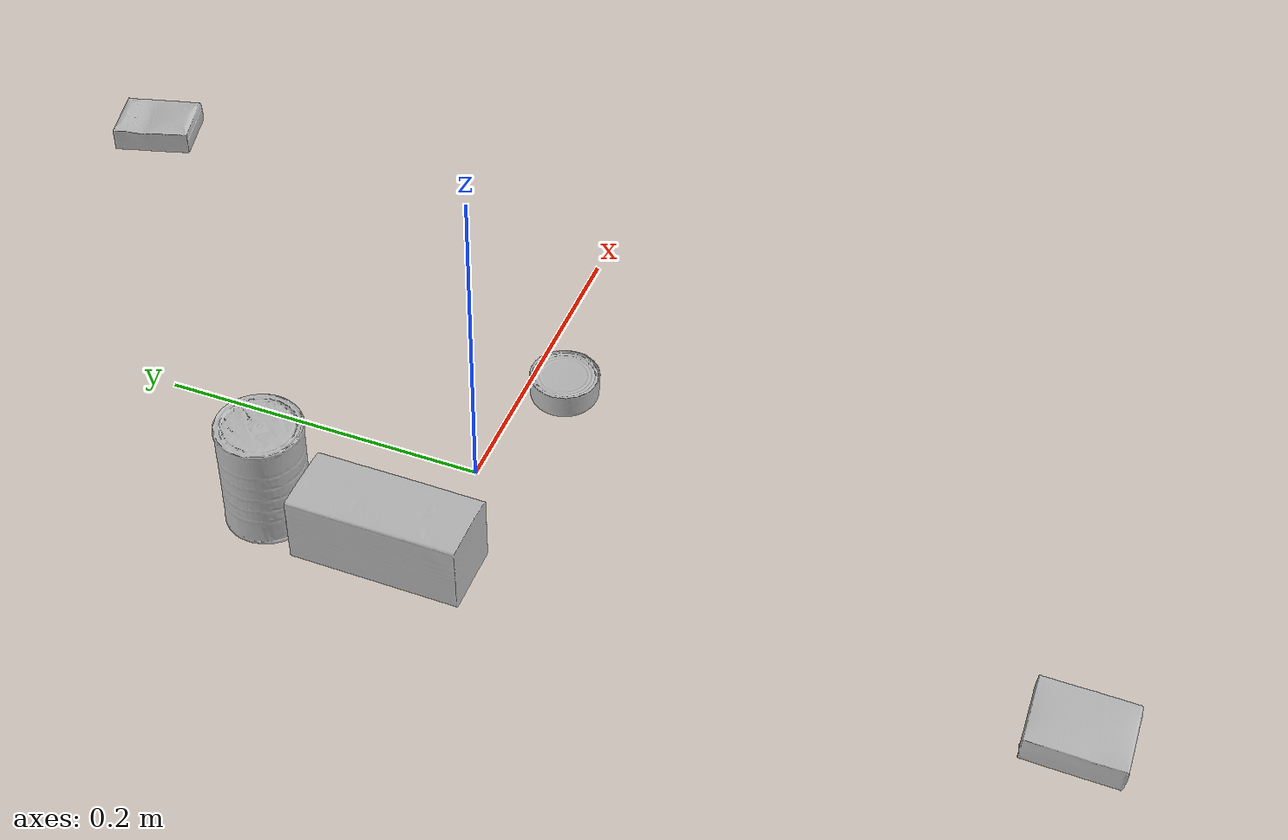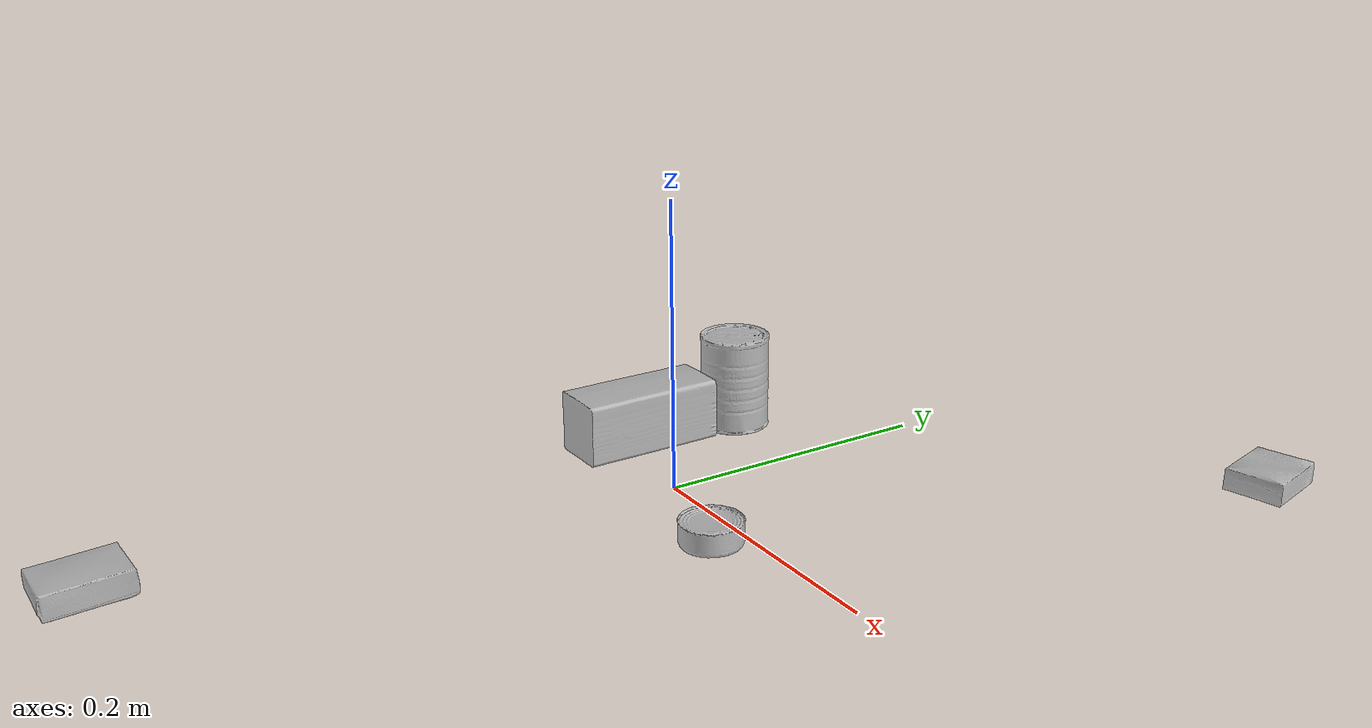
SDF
<sdf version="1.4">
  <world name="default">
    <light name="light1" type="point">
      <pose>0 0 1 0 0 0</pose>
      <diffuse>3 3 3 1</diffuse>
      <specular>3 3 3 1</specular>
    </light>
    <light name="light2" type="point">
      <pose>0 0.5 2 0 0 0</pose>
      <diffuse>1 1 1 1</diffuse>
      <specular>1 1 1 1</specular>
    </light>
    <light name="light3" type="point">
      <pose>0 0.5 2 0 0 0</pose>
      <diffuse>3 3 3 1</diffuse>
      <specular>3 3 3 1</specular>
    </light>
    <scene>
      <ambient>0.7 0.7 0.7</ambient>
    </scene>
    <model name="box1">
      <link name="link_box1">
        <collision name="default">
          <geometry>
            <mesh>
              <uri>model://pudding_box/collision_meshes/collision.obj</uri>
              <scale>0.5 0.5 0.5</scale>
            </mesh>
          </geometry>
          <surface>
            <friction>
              <ode>
                <mu>0.5</mu>
                <mu2>0.5</mu2>
              </ode>
            </friction>
          <contact>
        <ode>
            <max_vel>0</max_vel>
            <min_depth>0.0001</min_depth>
            <kp>1e8</kp>
        </ode>
    </contact></surface>
        </collision>
        <visual name="default">
          <geometry>
            <mesh>
              <uri>model://pudding_box/visual_meshes/visual.dae</uri>
              <scale>0.5 0.5 0.5</scale>
            </mesh>
          </geometry>
        </visual>
        <inertial>
          <mass>0.03999795392155647</mass>
          <pose>0.00024474109522998333 0.0004033942532259971 -0.0002594413817860186 0.005213101299265121 -0.006603799659933957 0.020079830747700592</pose>
          <inertia>
            <ixx>1.1303907e-05</ixx>
            <iyy>7.605349e-06</iyy>
            <izz>1.6693173e-05</izz>
            <ixy>0</ixy>
            <ixz>0</ixz>
            <iyz>0</iyz>
          </inertia>
        </inertial>
      </link>
      <pose>-0.06286496669054031 -0.3672241270542145 0.009862899780273438 0.022348540862773738 -0.01139171040005072 0.021888746898087695</pose>
    </model>
    <model name="box2">
      <link name="link_box2">
        <collision name="default">
          <geometry>
            <mesh>
              <uri>model://cracker_box/collision_meshes/collision.obj</uri>
              <scale>0.25 0.25 0.25</scale>
            </mesh>
          </geometry>
          <surface>
            <friction>
              <ode>
                <mu>0.5</mu>
                <mu2>0.5</mu2>
              </ode>
            </friction>
          <contact>
        <ode>
            <max_vel>0</max_vel>
            <min_depth>0.0001</min_depth>
            <kp>1e8</kp>
        </ode>
    </contact></surface>
        </collision>
        <visual name="default">
          <geometry>
            <mesh>
              <uri>model://cracker_box/visual_meshes/visual.dae</uri>
              <scale>0.25 0.25 0.25</scale>
            </mesh>
          </geometry>
        </visual>
        <inertial>
          <mass>0.046595875173807144</mass>
          <pose>0.00023660322767682374 6.358561950037256e-05 -0.0004257383698131889 -0.00031620768958073674 -0.011106491463008503 0.002546795235494827</pose>
          <inertia>
            <ixx>7.407444e-06</ixx>
            <iyy>1.2231146e-05</iyy>
            <izz>1.7454966e-05</izz>
            <ixy>0</ixy>
            <ixz>0</ixz>
            <iyz>0</iyz>
          </inertia>
        </inertial>
      </link>
      <pose>0.22023318707942963 0.3363906741142273 0.009096029214560986 -0.01405064952406178 -0.0050165044915146135 -1.317174152401737</pose>
    </model>
    <model name="box3">
      <link name="link_box3">
        <collision name="default">
          <geometry>
            <mesh>
              <uri>model://wood_block/collision_meshes/collision.obj</uri>
              <scale>0.5 0.5 0.5</scale>
            </mesh>
          </geometry>
          <surface>
            <friction>
              <ode>
                <mu>0.5</mu>
                <mu2>0.5</mu2>
              </ode>
            </friction>
          <contact>
        <ode>
            <max_vel>0</max_vel>
            <min_depth>0.0001</min_depth>
            <kp>1e8</kp>
        </ode>
    </contact></surface>
        </collision>
        <visual name="default">
          <geometry>
            <mesh>
              <uri>model://wood_block/visual_meshes/visual.dae</uri>
              <scale>0.5 0.5 0.5</scale>
            </mesh>
          </geometry>
        </visual>
        <inertial>
          <mass>0.28600308299064636</mass>
          <pose>-2.9066577553749084e-06 -0.000285404734313488 0.00013204291462898254 -0.052207212015849935 -0.005192697210617926 -0.006861377963206113</pose>
          <inertia>
            <ixx>9.567885e-05</ixx>
            <iyy>0.00030224954</iyy>
            <izz>0.00030111894</izz>
            <ixy>0</ixy>
            <ixz>0</ixz>
            <iyz>0</iyz>
          </inertia>
        </inertial>
      </link>
      <pose>-0.07835535705089569 0.019481824710965157 0.022629261016845703 -0.005208555343548948 0.005718772227648626 1.5749166572658637</pose>
    </model>
    <model name="can1">
      <link name="link_can1">
        <collision name="default">
          <geometry>
            <mesh>
              <uri>model://master_chef_can/collision_meshes/collision.obj</uri>
              <scale>0.5 0.5 0.5</scale>
            </mesh>
          </geometry>
          <surface>
            <friction>
              <ode>
                <mu>0.5</mu>
                <mu2>0.5</mu2>
              </ode>
            </friction>
          <contact>
        <ode>
            <max_vel>0</max_vel>
            <min_depth>0.0001</min_depth>
            <kp>1e8</kp>
        </ode>
    </contact></surface>
        </collision>
        <visual name="default">
          <geometry>
            <mesh>
              <uri>model://master_chef_can/visual_meshes/visual.dae</uri>
              <scale>0.5 0.5 0.5</scale>
            </mesh>
          </geometry>
        </visual>
        <inertial>
          <mass>0.116209015250206</mass>
          <pose>-4.661964703700505e-05 1.3926850783718692e-07 -5.0799026212189347e-05 -0.001799512795725948 0.0006479254888938259 -0.6102617322721998</pose>
          <inertia>
            <ixx>6.820682e-05</ixx>
            <iyy>6.7704816e-05</iyy>
            <izz>3.768948e-05</izz>
            <ixy>0</ixy>
            <ixz>0</ixz>
            <iyz>0</iyz>
          </inertia>
        </inertial>
      </link>
      <pose>-0.07333584874868393 0.09736776351928711 0.03530199080705643 -1.2076469807409834e-06 -1.1659692096672923e-06 1.4567731917101752</pose>
    </model>
    <model name="can2">
      <link name="link_can2">
        <collision name="default">
          <geometry>
            <mesh>
              <uri>model://tuna_fish_can/collision_meshes/collision.obj</uri>
              <scale>0.5 0.5 0.5</scale>
            </mesh>
          </geometry>
          <surface>
            <friction>
              <ode>
                <mu>0.5</mu>
                <mu2>0.5</mu2>
              </ode>
            </friction>
          <contact>
        <ode>
            <max_vel>0</max_vel>
            <min_depth>0.0001</min_depth>
            <kp>1e8</kp>
        </ode>
    </contact></surface>
        </collision>
        <visual name="default">
          <geometry>
            <mesh>
              <uri>model://tuna_fish_can/visual_meshes/visual.dae</uri>
              <scale>0.5 0.5 0.5</scale>
            </mesh>
          </geometry>
        </visual>
        <inertial>
          <mass>0.017585277557373047</mass>
          <pose>-2.03625786525663e-05 -7.2565176196803804e-06 -0.000526902440469712 -0.0017944765250671837 0.00017163661440384507 0.24054644931605637</pose>
          <inertia>
            <ixx>2.3775558e-06</ixx>
            <iyy>2.3676464e-06</iyy>
            <izz>4.0683376e-06</izz>
            <ixy>0</ixy>
            <ixz>0</ixz>
            <iyz>0</iyz>
          </inertia>
        </inertial>
      </link>
      <pose>0.08205898106098175 -0.0235116146504879 0.008520000614225864 -1.859511681206548e-08 1.0061305765538335e-08 -2.4550695110872294</pose>
    </model>
  <physics type="ode">
      <max_contacts>50</max_contacts>
      <ode>
        <solver>
          <type>quick</type>
          <iters>75</iters>
        </solver>
        <constraints>
          <contact_max_correcting_vel>0</contact_max_correcting_vel>
          <contact_surface_layer>0</contact_surface_layer>
        </constraints>
      </ode>
    </physics></world>
</sdf>
